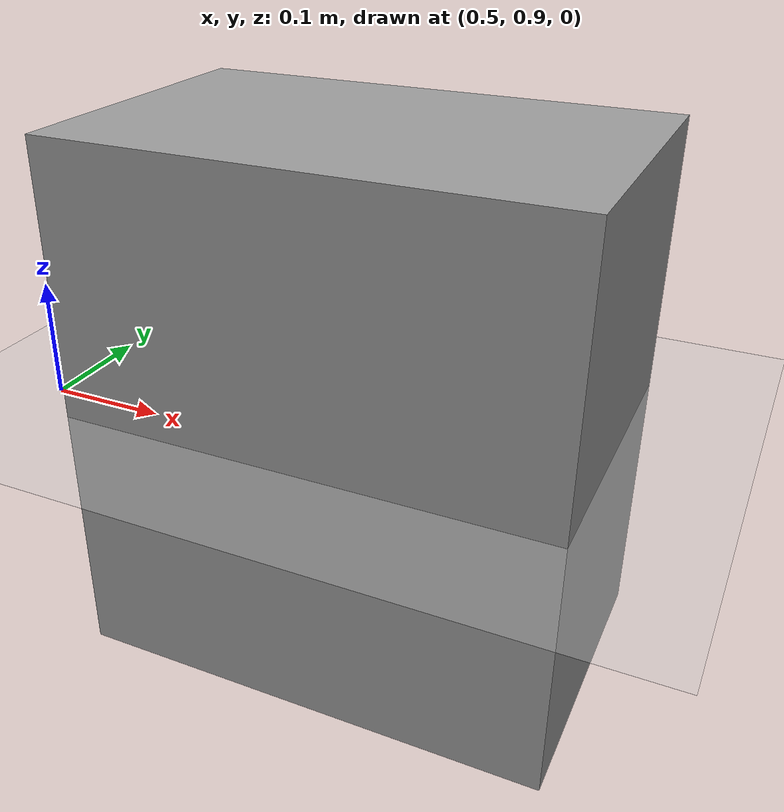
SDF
<?xml version="1.0" ?>
<sdf version="1.4">
  <world name="default">
    <!-- A gazebo links attacher -->
    <plugin name="ros_link_attacher_plugin" filename="libgazebo_ros_link_attacher.so"/>
    <include>
      <uri>model://sun</uri>
    </include>
    <!-- A ground plane -->
    <include>
      <uri>model://ground_plane</uri>
    </include>

    <model name='unit_box'>
      <pose>0.75 1 0 0 -0 0</pose>
      <link name='link'>
        <inertial>
          <mass>1</mass>
          <inertia>
            <ixx>0.166667</ixx>
            <ixy>0</ixy>
            <ixz>0</ixz>
            <iyy>0.166667</iyy>
            <iyz>0</iyz>
            <izz>0.166667</izz>
          </inertia>
          <pose>0 0 0 0 -0 0</pose>
        </inertial>
        <collision name='collision'>
          <geometry>
            <box>
              <size>0.43 0.27 0.475</size>
            </box>
          </geometry>
          <max_contacts>10</max_contacts>
          <surface>
            <contact>
              <ode/>
            </contact>
            <bounce/>
            <friction>
              <torsional>
                <ode/>
              </torsional>
              <ode/>
            </friction>
          </surface>
        </collision>
        <visual name='visual'>
          <geometry>
            <box>
              <size>0.43 0.27 0.475</size>
            </box>
          </geometry>
          <material>
            <script>
              <name>Gazebo/Grey</name>
              <uri>file://media/materials/scripts/gazebo.material</uri>
            </script>
          </material>
        </visual>
        <self_collide>0</self_collide>
        <enable_wind>0</enable_wind>
        <kinematic>0</kinematic>
      </link>
    </model>
  </world>
</sdf>
